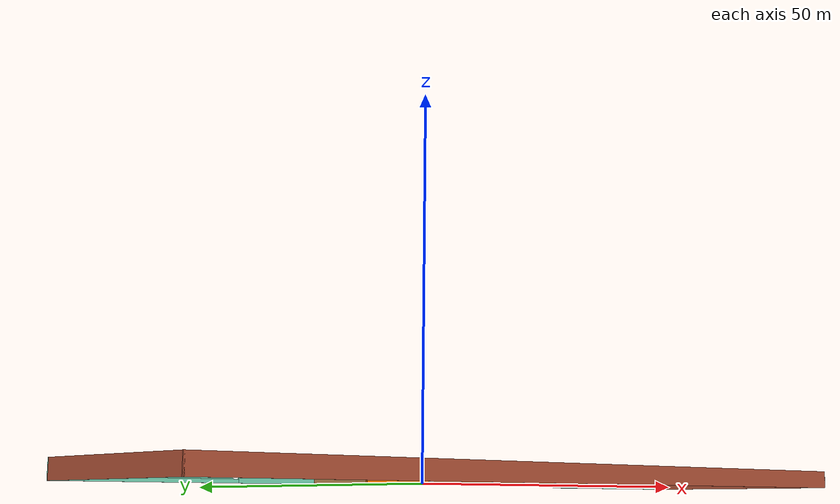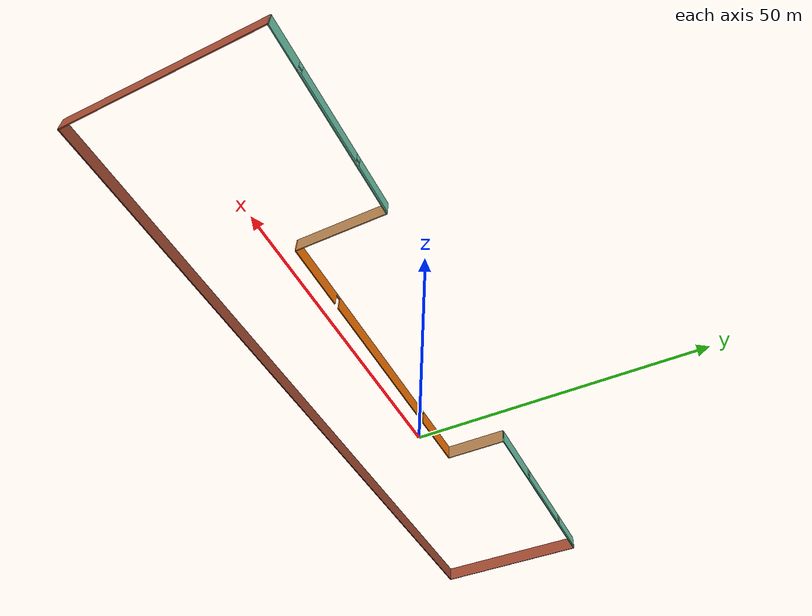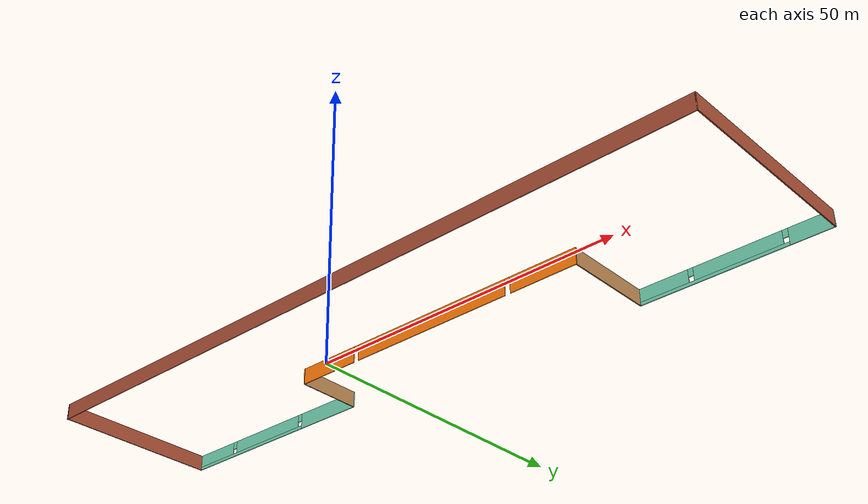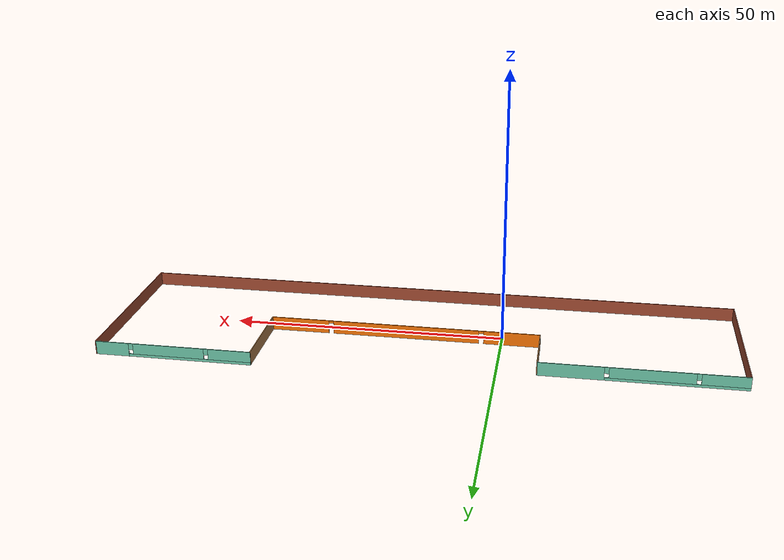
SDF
<?xml version='1.0'?>
<sdf version='1.6'>
  <model name='model'>
    <pose frame=''>14.177 1.24109 0 0 -0 0</pose>
    <link name='Wall_18'>
      <collision name='Wall_18_Collision'>
        <geometry>
          <box>
            <size>113.75 0.15 2.5</size>
          </box>
        </geometry>
        <pose frame=''>0 0 1.25 0 -0 0</pose>
      </collision>
      <visual name='Wall_18_Visual'>
        <pose frame=''>0 0 1.25 0 -0 0</pose>
        <geometry>
          <box>
            <size>113.75 0.15 2.5</size>
          </box>
        </geometry>
        <material>
          <script>
            <uri>file://media/materials/scripts/gazebo.material</uri>
            <name>Gazebo/Bricks</name>
          </script>
          <ambient>1 1 1 1</ambient>
        </material>
        <meta>
          <layer>0</layer>
        </meta>
      </visual>
      <pose frame=''>-1e-06 -15.425 0 0 -0 0</pose>
    </link>
    <link name='Wall_19'>
      <collision name='Wall_19_Collision'>
        <geometry>
          <box>
            <size>31 0.15 2.5</size>
          </box>
        </geometry>
        <pose frame=''>0 0 1.25 0 -0 0</pose>
      </collision>
      <visual name='Wall_19_Visual'>
        <pose frame=''>0 0 1.25 0 -0 0</pose>
        <geometry>
          <box>
            <size>31 0.15 2.5</size>
          </box>
        </geometry>
        <material>
          <script>
            <uri>file://media/materials/scripts/gazebo.material</uri>
            <name>Gazebo/Bricks</name>
          </script>
          <ambient>1 1 1 1</ambient>
        </material>
        <meta>
          <layer>0</layer>
        </meta>
      </visual>
      <pose frame=''>56.8 0 0 0 -0 1.5708</pose>
    </link>
    <link name='Wall_20'>
      <pose frame=''>42.625 15.425 0 0 -0 3.14159</pose>
      <visual name='Wall_20_Visual_0'>
        <pose frame=''>-11.1587 0 1.25 0 -0 0</pose>
        <geometry>
          <box>
            <size>6.18264 0.15 2.5</size>
          </box>
        </geometry>
        <material>
          <script>
            <uri>file://media/materials/scripts/gazebo.material</uri>
            <name>Gazebo/Grey</name>
          </script>
          <ambient>0.435294 0.796078 0.67451 1</ambient>
        </material>
        <meta>
          <layer>0</layer>
        </meta>
      </visual>
      <collision name='Wall_20_Collision_0'>
        <geometry>
          <box>
            <size>6.18264 0.15 2.5</size>
          </box>
        </geometry>
        <pose frame=''>-11.1587 0 1.25 0 -0 0</pose>
      </collision>
      <visual name='Wall_20_Visual_1'>
        <pose frame=''>3.09132 0 0.25 0 -0 0</pose>
        <geometry>
          <box>
            <size>22.3174 0.15 0.5</size>
          </box>
        </geometry>
        <material>
          <script>
            <uri>file://media/materials/scripts/gazebo.material</uri>
            <name>Gazebo/Grey</name>
          </script>
          <ambient>0.435294 0.796078 0.67451 1</ambient>
        </material>
        <meta>
          <layer>0</layer>
        </meta>
      </visual>
      <collision name='Wall_20_Collision_1'>
        <geometry>
          <box>
            <size>22.3174 0.15 0.5</size>
          </box>
        </geometry>
        <pose frame=''>3.09132 0 0.25 0 -0 0</pose>
      </collision>
      <visual name='Wall_20_Visual_2'>
        <pose frame=''>-0.765602 0 1.5 0 -0 0</pose>
        <geometry>
          <box>
            <size>13.0035 0.15 2</size>
          </box>
        </geometry>
        <material>
          <script>
            <uri>file://media/materials/scripts/gazebo.material</uri>
            <name>Gazebo/Grey</name>
          </script>
          <ambient>0.435294 0.796078 0.67451 1</ambient>
        </material>
        <meta>
          <layer>0</layer>
        </meta>
      </visual>
      <collision name='Wall_20_Collision_2'>
        <geometry>
          <box>
            <size>13.0035 0.15 2</size>
          </box>
        </geometry>
        <pose frame=''>-0.765602 0 1.5 0 -0 0</pose>
      </collision>
      <visual name='Wall_20_Visual_3'>
        <pose frame=''>10.3931 0 1.5 0 -0 0</pose>
        <geometry>
          <box>
            <size>7.71385 0.15 2</size>
          </box>
        </geometry>
        <material>
          <script>
            <uri>file://media/materials/scripts/gazebo.material</uri>
            <name>Gazebo/Grey</name>
          </script>
          <ambient>0.435294 0.796078 0.67451 1</ambient>
        </material>
        <meta>
          <layer>0</layer>
        </meta>
      </visual>
      <collision name='Wall_20_Collision_3'>
        <geometry>
          <box>
            <size>7.71385 0.15 2</size>
          </box>
        </geometry>
        <pose frame=''>10.3931 0 1.5 0 -0 0</pose>
      </collision>
      <visual name='Wall_20_Visual_4'>
        <pose frame=''>-7.66735 0 1.9 0 -0 0</pose>
        <geometry>
          <box>
            <size>0.8 0.15 1.2</size>
          </box>
        </geometry>
        <material>
          <script>
            <uri>file://media/materials/scripts/gazebo.material</uri>
            <name>Gazebo/Grey</name>
          </script>
          <ambient>0.435294 0.796078 0.67451 1</ambient>
        </material>
        <meta>
          <layer>0</layer>
        </meta>
      </visual>
      <collision name='Wall_20_Collision_4'>
        <geometry>
          <box>
            <size>0.8 0.15 1.2</size>
          </box>
        </geometry>
        <pose frame=''>-7.66735 0 1.9 0 -0 0</pose>
      </collision>
      <visual name='Wall_20_Visual_5'>
        <pose frame=''>6.13615 0 1.9 0 -0 0</pose>
        <geometry>
          <box>
            <size>0.8 0.15 1.2</size>
          </box>
        </geometry>
        <material>
          <script>
            <uri>file://media/materials/scripts/gazebo.material</uri>
            <name>Gazebo/Grey</name>
          </script>
          <ambient>0.435294 0.796078 0.67451 1</ambient>
        </material>
        <meta>
          <layer>0</layer>
        </meta>
      </visual>
      <collision name='Wall_20_Collision_5'>
        <geometry>
          <box>
            <size>0.8 0.15 1.2</size>
          </box>
        </geometry>
        <pose frame=''>6.13615 0 1.9 0 -0 0</pose>
      </collision>
    </link>
    <link name='Wall_21'>
      <collision name='Wall_21_Collision'>
        <geometry>
          <box>
            <size>14.5 0.15 2.5</size>
          </box>
        </geometry>
        <pose frame=''>0 0 1.25 0 -0 0</pose>
      </collision>
      <visual name='Wall_21_Visual'>
        <pose frame=''>0 0 1.25 0 -0 0</pose>
        <geometry>
          <box>
            <size>14.5 0.15 2.5</size>
          </box>
        </geometry>
        <material>
          <script>
            <uri>file://media/materials/scripts/gazebo.material</uri>
            <name>Gazebo/Wood</name>
          </script>
          <ambient>1 1 1 1</ambient>
        </material>
        <meta>
          <layer>0</layer>
        </meta>
      </visual>
      <pose frame=''>28.45 8.25 0 0 0 -1.5708</pose>
    </link>
    <link name='Wall_22'>
      <pose frame=''>3.65 1.075 0 0 -0 3.14159</pose>
      <visual name='Wall_22_Visual_0'>
        <pose frame=''>-19.4969 0 1.25 0 -0 0</pose>
        <geometry>
          <box>
            <size>10.7563 0.15 2.5</size>
          </box>
        </geometry>
        <material>
          <script>
            <uri>file://media/materials/scripts/gazebo.material</uri>
            <name>Gazebo/Grey</name>
          </script>
          <ambient>0.996078 0.47451 0.0196078 1</ambient>
        </material>
        <meta>
          <layer>0</layer>
        </meta>
      </visual>
      <collision name='Wall_22_Collision_0'>
        <geometry>
          <box>
            <size>10.7563 0.15 2.5</size>
          </box>
        </geometry>
        <pose frame=''>-19.4969 0 1.25 0 -0 0</pose>
      </collision>
      <visual name='Wall_22_Visual_1'>
        <pose frame=''>0.235438 0 1.25 0 -0 0</pose>
        <geometry>
          <box>
            <size>26.9083 0.15 2.5</size>
          </box>
        </geometry>
        <material>
          <script>
            <uri>file://media/materials/scripts/gazebo.material</uri>
            <name>Gazebo/Grey</name>
          </script>
          <ambient>0.996078 0.47451 0.0196078 1</ambient>
        </material>
        <meta>
          <layer>0</layer>
        </meta>
      </visual>
      <collision name='Wall_22_Collision_1'>
        <geometry>
          <box>
            <size>26.9083 0.15 2.5</size>
          </box>
        </geometry>
        <pose frame=''>0.235438 0 1.25 0 -0 0</pose>
      </collision>
      <visual name='Wall_22_Visual_2'>
        <pose frame=''>19.7323 0 1.25 0 -0 0</pose>
        <geometry>
          <box>
            <size>10.2854 0.15 2.5</size>
          </box>
        </geometry>
        <material>
          <script>
            <uri>file://media/materials/scripts/gazebo.material</uri>
            <name>Gazebo/Grey</name>
          </script>
          <ambient>0.996078 0.47451 0.0196078 1</ambient>
        </material>
        <meta>
          <layer>0</layer>
        </meta>
      </visual>
      <collision name='Wall_22_Collision_2'>
        <geometry>
          <box>
            <size>10.2854 0.15 2.5</size>
          </box>
        </geometry>
        <pose frame=''>19.7323 0 1.25 0 -0 0</pose>
      </collision>
      <visual name='Wall_22_Visual_3'>
        <pose frame=''>-13.6687 0 2.25 0 -0 0</pose>
        <geometry>
          <box>
            <size>0.9 0.15 0.5</size>
          </box>
        </geometry>
        <material>
          <script>
            <uri>file://media/materials/scripts/gazebo.material</uri>
            <name>Gazebo/Grey</name>
          </script>
          <ambient>0.996078 0.47451 0.0196078 1</ambient>
        </material>
        <meta>
          <layer>0</layer>
        </meta>
      </visual>
      <collision name='Wall_22_Collision_3'>
        <geometry>
          <box>
            <size>0.9 0.15 0.5</size>
          </box>
        </geometry>
        <pose frame=''>-13.6687 0 2.25 0 -0 0</pose>
      </collision>
      <visual name='Wall_22_Visual_4'>
        <pose frame=''>14.1396 0 2.25 0 -0 0</pose>
        <geometry>
          <box>
            <size>0.9 0.15 0.5</size>
          </box>
        </geometry>
        <material>
          <script>
            <uri>file://media/materials/scripts/gazebo.material</uri>
            <name>Gazebo/Grey</name>
          </script>
          <ambient>0.996078 0.47451 0.0196078 1</ambient>
        </material>
        <meta>
          <layer>0</layer>
        </meta>
      </visual>
      <collision name='Wall_22_Collision_4'>
        <geometry>
          <box>
            <size>0.9 0.15 0.5</size>
          </box>
        </geometry>
        <pose frame=''>14.1396 0 2.25 0 -0 0</pose>
      </collision>
    </link>
    <link name='Wall_23'>
      <collision name='Wall_23_Collision'>
        <geometry>
          <box>
            <size>10.5 0.15 2.5</size>
          </box>
        </geometry>
        <pose frame=''>0 0 1.25 0 -0 0</pose>
      </collision>
      <visual name='Wall_23_Visual'>
        <pose frame=''>0 0 1.25 0 -0 0</pose>
        <geometry>
          <box>
            <size>10.5 0.15 2.5</size>
          </box>
        </geometry>
        <material>
          <script>
            <uri>file://media/materials/scripts/gazebo.material</uri>
            <name>Gazebo/Wood</name>
          </script>
          <ambient>1 1 1 1</ambient>
        </material>
        <meta>
          <layer>0</layer>
        </meta>
      </visual>
      <pose frame=''>-21.15 6.25 0 0 -0 1.5708</pose>
    </link>
    <link name='Wall_24'>
      <pose frame=''>-38.95 11.425 0 0 -0 3.14159</pose>
      <visual name='Wall_24_Visual_0'>
        <pose frame=''>-12.1332 0 1.25 0 -0 0</pose>
        <geometry>
          <box>
            <size>11.4837 0.15 2.5</size>
          </box>
        </geometry>
        <material>
          <script>
            <uri>file://media/materials/scripts/gazebo.material</uri>
            <name>Gazebo/Grey</name>
          </script>
          <ambient>0.435294 0.796078 0.67451 1</ambient>
        </material>
        <meta>
          <layer>0</layer>
        </meta>
      </visual>
      <collision name='Wall_24_Collision_0'>
        <geometry>
          <box>
            <size>11.4837 0.15 2.5</size>
          </box>
        </geometry>
        <pose frame=''>-12.1332 0 1.25 0 -0 0</pose>
      </collision>
      <visual name='Wall_24_Visual_1'>
        <pose frame=''>5.74183 0 0.25 0 -0 0</pose>
        <geometry>
          <box>
            <size>24.2663 0.15 0.5</size>
          </box>
        </geometry>
        <material>
          <script>
            <uri>file://media/materials/scripts/gazebo.material</uri>
            <name>Gazebo/Grey</name>
          </script>
          <ambient>0.435294 0.796078 0.67451 1</ambient>
        </material>
        <meta>
          <layer>0</layer>
        </meta>
      </visual>
      <collision name='Wall_24_Collision_1'>
        <geometry>
          <box>
            <size>24.2663 0.15 0.5</size>
          </box>
        </geometry>
        <pose frame=''>5.74183 0 0.25 0 -0 0</pose>
      </collision>
      <visual name='Wall_24_Visual_2'>
        <pose frame=''>1.68375 0 1.5 0 -0 0</pose>
        <geometry>
          <box>
            <size>14.5502 0.15 2</size>
          </box>
        </geometry>
        <material>
          <script>
            <uri>file://media/materials/scripts/gazebo.material</uri>
            <name>Gazebo/Grey</name>
          </script>
          <ambient>0.435294 0.796078 0.67451 1</ambient>
        </material>
        <meta>
          <layer>0</layer>
        </meta>
      </visual>
      <collision name='Wall_24_Collision_2'>
        <geometry>
          <box>
            <size>14.5502 0.15 2</size>
          </box>
        </geometry>
        <pose frame=''>1.68375 0 1.5 0 -0 0</pose>
      </collision>
      <visual name='Wall_24_Visual_3'>
        <pose frame=''>13.8169 0 1.5 0 -0 0</pose>
        <geometry>
          <box>
            <size>8.11616 0.15 2</size>
          </box>
        </geometry>
        <material>
          <script>
            <uri>file://media/materials/scripts/gazebo.material</uri>
            <name>Gazebo/Grey</name>
          </script>
          <ambient>0.435294 0.796078 0.67451 1</ambient>
        </material>
        <meta>
          <layer>0</layer>
        </meta>
      </visual>
      <collision name='Wall_24_Collision_3'>
        <geometry>
          <box>
            <size>8.11616 0.15 2</size>
          </box>
        </geometry>
        <pose frame=''>13.8169 0 1.5 0 -0 0</pose>
      </collision>
      <visual name='Wall_24_Visual_4'>
        <pose frame=''>-5.99133 0 1.9 0 -0 0</pose>
        <geometry>
          <box>
            <size>0.8 0.15 1.2</size>
          </box>
        </geometry>
        <material>
          <script>
            <uri>file://media/materials/scripts/gazebo.material</uri>
            <name>Gazebo/Grey</name>
          </script>
          <ambient>0.435294 0.796078 0.67451 1</ambient>
        </material>
        <meta>
          <layer>0</layer>
        </meta>
      </visual>
      <collision name='Wall_24_Collision_4'>
        <geometry>
          <box>
            <size>0.8 0.15 1.2</size>
          </box>
        </geometry>
        <pose frame=''>-5.99133 0 1.9 0 -0 0</pose>
      </collision>
      <visual name='Wall_24_Visual_5'>
        <pose frame=''>9.35884 0 1.9 0 -0 0</pose>
        <geometry>
          <box>
            <size>0.8 0.15 1.2</size>
          </box>
        </geometry>
        <material>
          <script>
            <uri>file://media/materials/scripts/gazebo.material</uri>
            <name>Gazebo/Grey</name>
          </script>
          <ambient>0.435294 0.796078 0.67451 1</ambient>
        </material>
        <meta>
          <layer>0</layer>
        </meta>
      </visual>
      <collision name='Wall_24_Collision_5'>
        <geometry>
          <box>
            <size>0.8 0.15 1.2</size>
          </box>
        </geometry>
        <pose frame=''>9.35884 0 1.9 0 -0 0</pose>
      </collision>
    </link>
    <link name='Wall_25'>
      <collision name='Wall_25_Collision'>
        <geometry>
          <box>
            <size>27 0.15 2.5</size>
          </box>
        </geometry>
        <pose frame=''>0 0 1.25 0 -0 0</pose>
      </collision>
      <visual name='Wall_25_Visual'>
        <pose frame=''>0 0 1.25 0 -0 0</pose>
        <geometry>
          <box>
            <size>27 0.15 2.5</size>
          </box>
        </geometry>
        <material>
          <script>
            <uri>file://media/materials/scripts/gazebo.material</uri>
            <name>Gazebo/Bricks</name>
          </script>
          <ambient>1 1 1 1</ambient>
        </material>
        <meta>
          <layer>0</layer>
        </meta>
      </visual>
      <pose frame=''>-56.75 -2 0 0 0 -1.5708</pose>
    </link>
    <static>1</static>
  </model>
</sdf>
